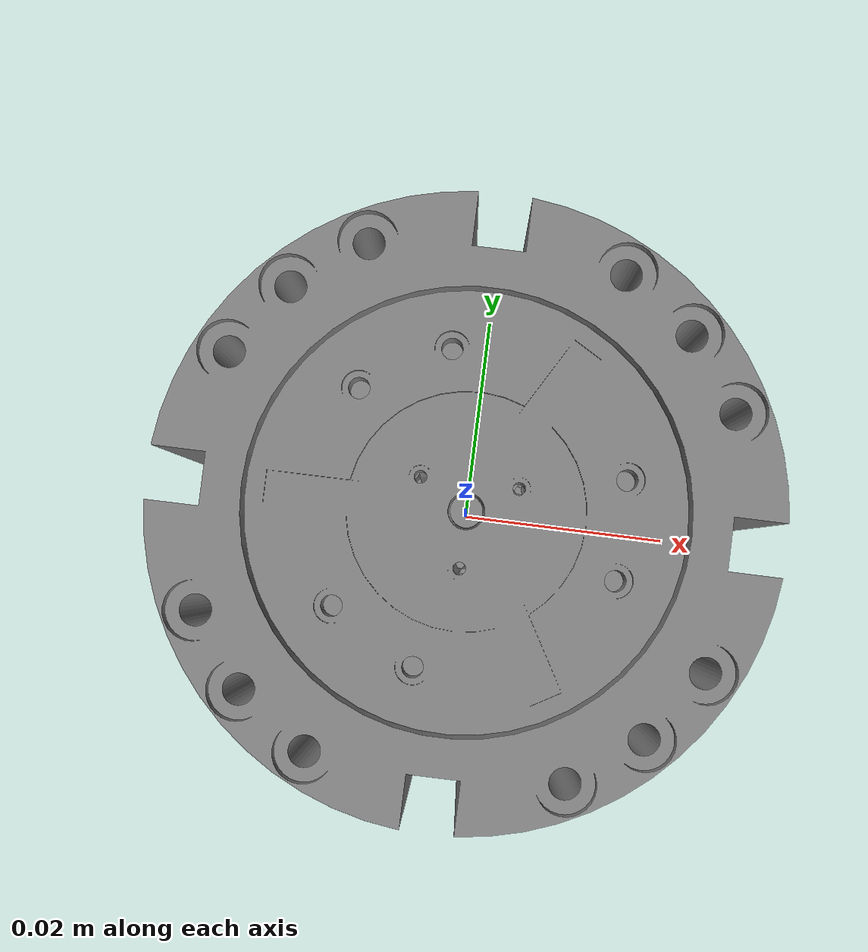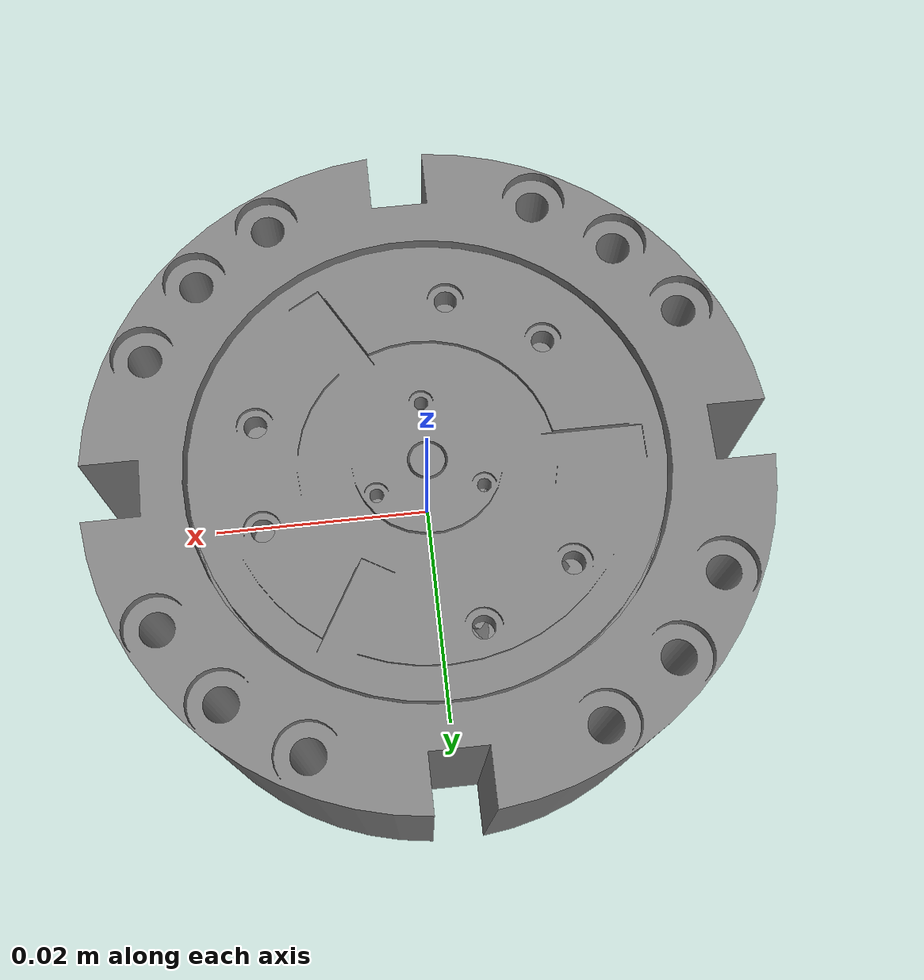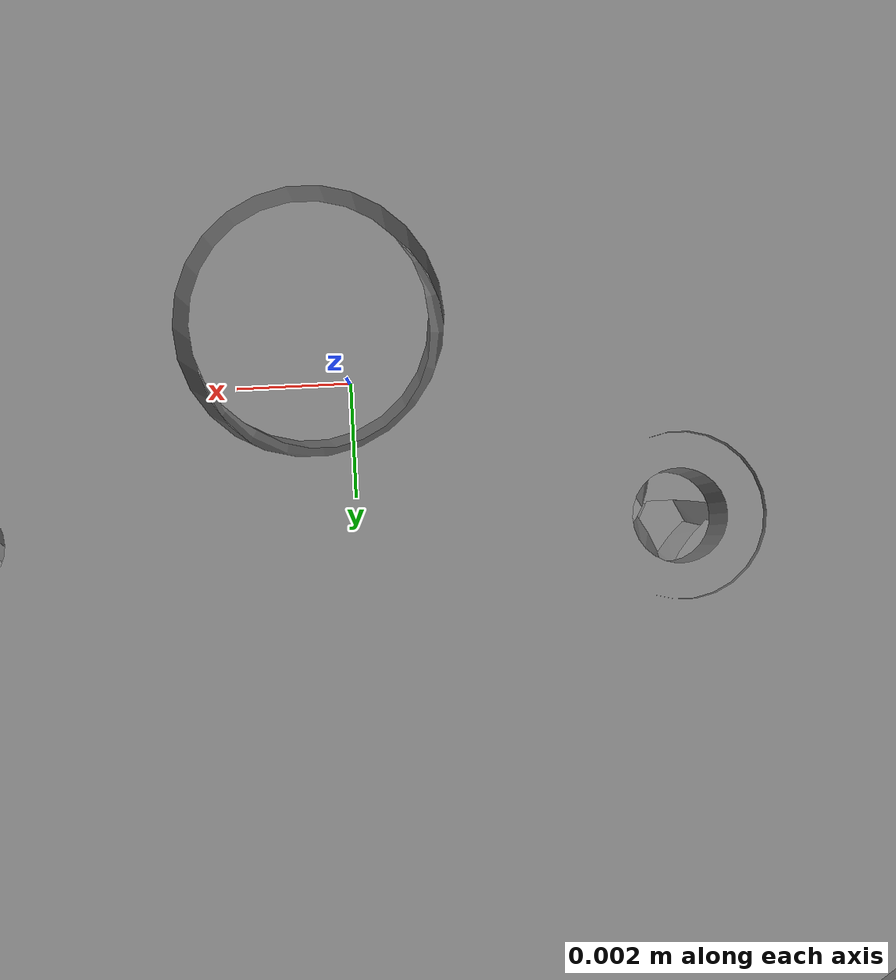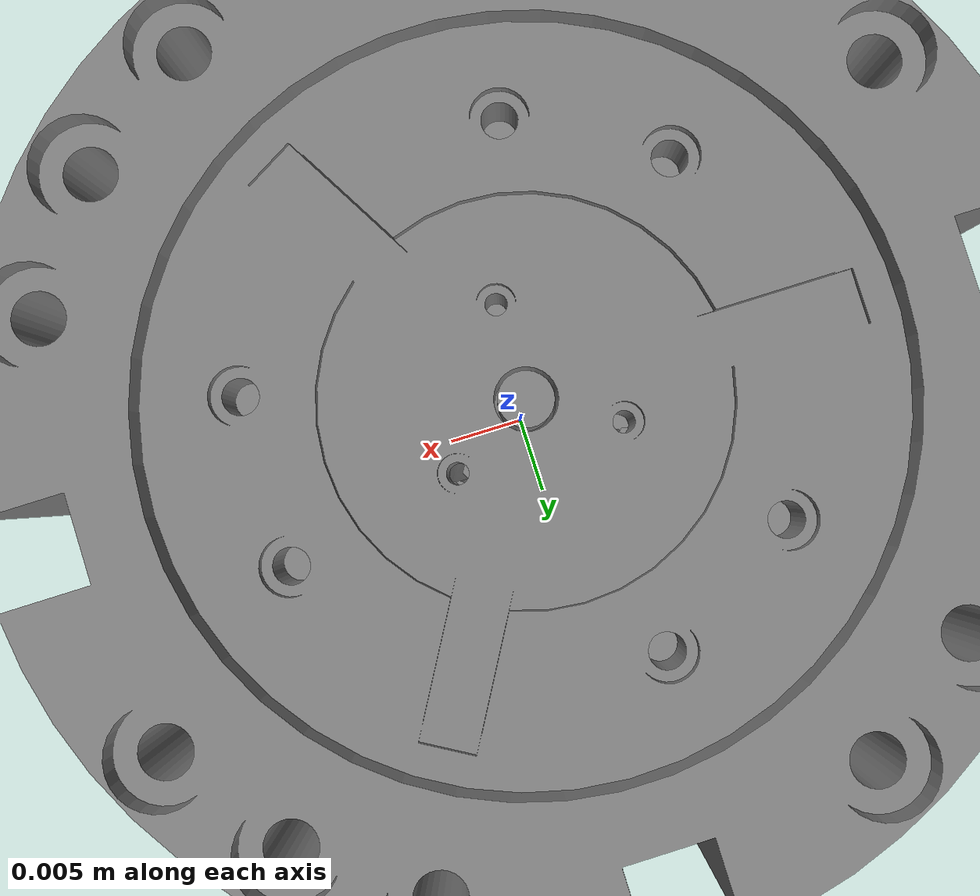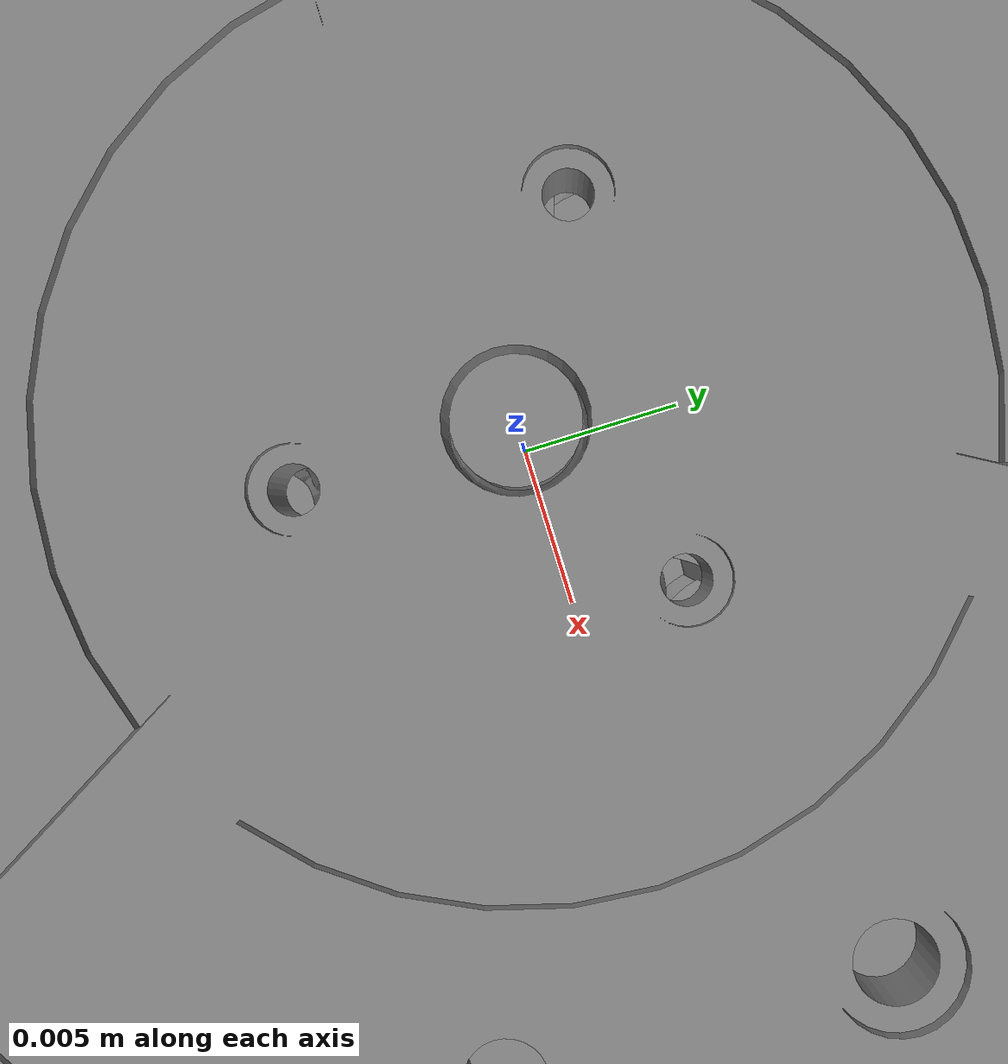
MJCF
<?xml version='1.0' encoding='utf-8'?>
<mujoco model="compact_two_stage_planetary_reducer"><compiler angle="radian" coordinate="local" /><asset><mesh name="mesh_input_flange" file="meshes/mesh_input_flange.obj" scale="0.001 0.001 0.001" /><mesh name="mesh_input_shaft" file="meshes/mesh_input_shaft.obj" scale="0.001 0.001 0.001" /><mesh name="mesh_micro_radial_ball_bearing_ball" file="meshes/mesh_micro_radial_ball_bearing_ball.obj" scale="0.001 0.001 0.001" /><mesh name="mesh_micro_radial_ball_bearing_inner_ring" file="meshes/mesh_micro_radial_ball_bearing_inner_ring.obj" scale="0.001 0.001 0.001" /><mesh name="mesh_micro_radial_ball_bearing_outer_ring" file="meshes/mesh_micro_radial_ball_bearing_outer_ring.obj" scale="0.001 0.001 0.001" /><mesh name="mesh_output_flange" file="meshes/mesh_output_flange.obj" scale="0.001 0.001 0.001" /><mesh name="mesh_reducer_housing" file="meshes/mesh_reducer_housing.obj" scale="0.001 0.001 0.001" /><mesh name="mesh_stage1_carrier" file="meshes/mesh_stage1_carrier.obj" scale="0.001 0.001 0.001" /><mesh name="mesh_stage1_planet_gear" file="meshes/mesh_stage1_planet_gear.obj" scale="0.001 0.001 0.001" /><mesh name="mesh_stage1_ring_gear" file="meshes/mesh_stage1_ring_gear.obj" scale="0.001 0.001 0.001" /><mesh name="mesh_stage1_sun_gear" file="meshes/mesh_stage1_sun_gear.obj" scale="0.001 0.001 0.001" /><mesh name="mesh_stage2_carrier" file="meshes/mesh_stage2_carrier.obj" scale="0.001 0.001 0.001" /><mesh name="mesh_stage2_planet_gear" file="meshes/mesh_stage2_planet_gear.obj" scale="0.001 0.001 0.001" /><mesh name="mesh_stage2_ring_gear" file="meshes/mesh_stage2_ring_gear.obj" scale="0.001 0.001 0.001" /><mesh name="mesh_stage2_sun_gear" file="meshes/mesh_stage2_sun_gear.obj" scale="0.001 0.001 0.001" /></asset><option gravity="0 0 0" timestep="0.002" /><worldbody><geom name="geom_cmp_pg2_housing_01" type="mesh" mesh="mesh_reducer_housing" /><body name="body_cmp_pg2_input_flange_01" pos="4.4408920985e-19 -4.32630110459e-19 -1.7763568394e-18" quat="1 0 0 0"><geom name="geom_cmp_pg2_input_flange_01" type="mesh" mesh="mesh_input_flange" /><joint name="joint_input_flange_to_shaft" type="hinge" pos="-4.4408920985e-19 4.32630110459e-19 -0.012" axis="0 0 1" damping="1e-4" /></body><body name="body_cmp_pg2_output_flange_01" pos="4.4408920985e-19 -3.17821455672e-19 -1.7763568394e-18" quat="1 0 0 0"><geom name="geom_cmp_pg2_output_flange_01" type="mesh" mesh="mesh_output_flange" /><joint name="joint_output_flange_to_stage2_carrier" type="hinge" pos="-4.4408920985e-19 3.17821455672e-19 0.015" axis="0 0 1" damping="1e-4" /></body><body name="body_cmp_pg2_input_shaft_01" pos="-2.22044604925e-19 -7.9255239235e-20 -4.4408920985e-19" quat="1 0 0 0"><geom name="geom_cmp_pg2_input_shaft_01" type="mesh" mesh="mesh_input_shaft" /><site name="site_input_bearing_inner_to_shaft__adapter_closure_0" pos="0 0 -0.011" quat="1 0 0 0" size="0.002" /><joint name="joint_input_shaft_revolute" type="hinge" pos="2.22044604925e-19 7.9255239235e-20 -0.0038" axis="0 0 1" damping="1e-4" /></body><body name="body_cmp_pg2_s01_carrier_01" pos="0 2.3687107099e-20 0" quat="1 0 0 0"><geom name="geom_cmp_pg2_s01_carrier_01" type="mesh" mesh="mesh_stage1_carrier" /><site name="site_intermediate_bearing_inner_to_stage1_carrier__adapter_closure_0" pos="0 0 0" quat="1 0 0 0" size="0.002" /><joint name="joint_stage1_carrier_revolute" type="hinge" pos="0 -2.3687107099e-20 0.0058" axis="0 0 1" damping="1e-4" /></body><body name="body_cmp_pg2_s02_carrier_01" pos="-4.4408920985e-19 -4.62411357498e-20 0" quat="1 0 0 0"><geom name="geom_cmp_pg2_s02_carrier_01" type="mesh" mesh="mesh_stage2_carrier" /><site name="site_output_bearing_inner_to_stage2_carrier__adapter_closure_0" pos="0 0 0.0108" quat="1 0 0 0" size="0.002" /><joint name="joint_stage2_carrier_revolute" type="hinge" pos="4.4408920985e-19 4.62411357498e-20 0.015" axis="0 0 1" damping="1e-4" /></body><body name="body_cmp_pg2_s01_ring_01" pos="0 0 -0.0084" quat="1 0 0 0"><geom name="geom_cmp_pg2_s01_ring_01" type="mesh" mesh="mesh_stage1_ring_gear" /><joint name="joint_stage1_ring_fixed" type="hinge" pos="2.19269047363e-18 -1.31998828369e-17 0.0046" axis="0 0 1" damping="1e-4" /></body><body name="body_cmp_pg2_s01_sun_01" pos="7.2858385991e-19 1.94004901433e-18 -0.0084" quat="1 0 0 0"><geom name="geom_cmp_pg2_s01_sun_01" type="mesh" mesh="mesh_stage1_sun_gear" /><joint name="joint_stage1_sun_to_input_shaft" type="hinge" pos="-7.2858385991e-19 -1.94004901433e-18 0.0046" axis="0 0 1" damping="1e-4" /></body><body name="body_cmp_pg2_s02_ring_01" pos="0 0 0.0012" quat="1 0 0 0"><geom name="geom_cmp_pg2_s02_ring_01" type="mesh" mesh="mesh_stage2_ring_gear" /><joint name="joint_stage2_ring_fixed" type="hinge" pos="2.91433543964e-18 -7.6803403855e-18 0.0046" axis="0 0 1" damping="1e-4" /></body><body name="body_cmp_pg2_s02_sun_01" pos="5.44703171457e-19 1.9214863869e-18 0.0012" quat="1 0 0 0"><geom name="geom_cmp_pg2_s02_sun_01" type="mesh" mesh="mesh_stage2_sun_gear" /><joint name="joint_stage2_sun_to_stage1_carrier" type="hinge" pos="-5.44703171457e-19 -1.9214863869e-18 0.0046" axis="0 0 1" damping="1e-4" /></body><body name="body_cmp_pg2_s01_planet_01" pos="0.01125 -2.38015705774e-18 -0.0084" quat="0.0871557427477 0 0 0.996194698092"><geom name="geom_cmp_pg2_s01_planet_01" type="mesh" mesh="mesh_stage1_planet_gear" /><site name="site_stage1_planet_bearing_1_outer_to_planet__adapter_closure_0" pos="0 0 0.0023" quat="1 0 0 0" size="0.002" /><joint name="joint_stage1_planet_1_revolute" type="hinge" pos="0 -3.90312782095e-18 0.0046" axis="0 0 1" damping="1e-4" /></body><body name="body_cmp_pg2_s02_planet_01" pos="0.009 -3.69017623819e-18 0.0012" quat="0.13052619222 0 0 0.991444861374"><geom name="geom_cmp_pg2_s02_planet_01" type="mesh" mesh="mesh_stage2_planet_gear" /><site name="site_stage2_planet_bearing_1_outer_to_planet__adapter_closure_0" pos="0 0 0.0023" quat="1 0 0 0" size="0.002" /><joint name="joint_stage2_planet_1_revolute" type="hinge" pos="0 -3.90312782095e-18 0.0046" axis="0 0 1" damping="1e-4" /></body><body name="body_cmp_pg2_s01_planet_02" pos="-0.005625 0.00974278579257 -0.0084" quat="0.819152044289 0 -0 -0.573576436351"><geom name="geom_cmp_pg2_s01_planet_02" type="mesh" mesh="mesh_stage1_planet_gear" /><site name="site_stage1_planet_bearing_2_outer_to_planet__adapter_closure_0" pos="0 0 0.0023" quat="1 0 0 0" size="0.002" /><joint name="joint_stage1_planet_2_revolute" type="hinge" pos="3.46944695195e-18 -4.33680868994e-18 0.0046" axis="0 0 1" damping="1e-4" /></body><body name="body_cmp_pg2_s02_planet_02" pos="-0.0045 0.00779422863406 0.0012" quat="0.793353340291 0 -0 -0.608761429009"><geom name="geom_cmp_pg2_s02_planet_02" type="mesh" mesh="mesh_stage2_planet_gear" /><site name="site_stage2_planet_bearing_2_outer_to_planet__adapter_closure_0" pos="0 0 0.0023" quat="1 0 0 0" size="0.002" /><joint name="joint_stage2_planet_2_revolute" type="hinge" pos="0 -4.33680868994e-18 0.0046" axis="0 0 1" damping="1e-4" /></body><body name="body_cmp_pg2_s01_planet_03" pos="-0.005625 -0.00974278579257 -0.0084" quat="0.906307787037 0 0 0.422618261741"><geom name="geom_cmp_pg2_s01_planet_03" type="mesh" mesh="mesh_stage1_planet_gear" /><site name="site_stage1_planet_bearing_3_outer_to_planet__adapter_closure_0" pos="0 0 0.0023" quat="1 0 0 0" size="0.002" /><joint name="joint_stage1_planet_3_revolute" type="hinge" pos="0 -3.46944695195e-18 0.0046" axis="0 0 1" damping="1e-4" /></body><body name="body_cmp_pg2_s02_planet_03" pos="-0.0045 -0.00779422863406 0.0012" quat="0.923879532511 0 0 0.382683432365"><geom name="geom_cmp_pg2_s02_planet_03" type="mesh" mesh="mesh_stage2_planet_gear" /><site name="site_stage2_planet_bearing_3_outer_to_planet__adapter_closure_0" pos="0 0 0.0023" quat="1 0 0 0" size="0.002" /><joint name="joint_stage2_planet_3_revolute" type="hinge" pos="1.73472347598e-18 -3.90312782095e-18 0.0046" axis="0 0 1" damping="1e-4" /></body><body name="body_cmp_pg2_aux_input_bearing" pos="1.7763568394e-18 -1.21790987369e-18 -0.011" quat="1 0 0 0"><geom name="geom_cmp_pg2_aux_input_bearing" type="mesh" mesh="mesh_micro_radial_ball_bearing_outer_ring" /><joint name="joint_input_bearing_outer_to_housing" type="hinge" pos="-1.7763568394e-18 1.21790987369e-18 0" axis="0 0 1" damping="1e-4" /></body><body name="body_cmp_pg2_aux_input_bearing_inner_ring" pos="1.7763568394e-18 -1.21790987369e-18 -0.011" quat="1 0 0 0"><geom name="geom_cmp_pg2_aux_input_bearing_inner_ring" type="mesh" mesh="mesh_micro_radial_ball_bearing_inner_ring" /><site name="site_input_bearing_inner_to_shaft__adapter_closure_1" pos="-2.22044604925e-19 1.7386395776e-19 0" quat="1 0 0 0" size="0.002" /><joint name="joint_cmp_pg2_aux_input_bearing_inner_outer_revolute" type="hinge" pos="0 0 0" axis="0 0 1" damping="1e-4" /></body><body name="body_cmp_pg2_aux_input_bearing_ball_00" pos="0.00245 -1.21790987369e-18 -0.011" quat="1 0 0 0"><geom name="geom_cmp_pg2_aux_input_bearing_ball_00" type="mesh" mesh="mesh_micro_radial_ball_bearing_ball" /><joint name="joint_cmp_pg2_aux_input_bearing___fixed__ball_00" type="hinge" pos="0 0 0" axis="0 0 1" damping="1e-4" /></body><body name="body_cmp_pg2_aux_input_bearing_ball_01" pos="0.00173241161391 0.00173241161391 -0.011" quat="0.923879532511 0 0 0.382683432365"><geom name="geom_cmp_pg2_aux_input_bearing_ball_01" type="mesh" mesh="mesh_micro_radial_ball_bearing_ball" /><joint name="joint_cmp_pg2_aux_input_bearing___fixed__ball_01" type="hinge" pos="0 0 0" axis="0 0 1" damping="1e-4" /></body><body name="body_cmp_pg2_aux_input_bearing_ball_02" pos="1.9263760723e-18 0.00245 -0.011" quat="0.707106781187 0 0 0.707106781187"><geom name="geom_cmp_pg2_aux_input_bearing_ball_02" type="mesh" mesh="mesh_micro_radial_ball_bearing_ball" /><joint name="joint_cmp_pg2_aux_input_bearing___fixed__ball_02" type="hinge" pos="0 0 0" axis="0 0 1" damping="1e-4" /></body><body name="body_cmp_pg2_aux_input_bearing_ball_03" pos="-0.00173241161391 0.00173241161391 -0.011" quat="0.382683432365 0 0 0.923879532511"><geom name="geom_cmp_pg2_aux_input_bearing_ball_03" type="mesh" mesh="mesh_micro_radial_ball_bearing_ball" /><joint name="joint_cmp_pg2_aux_input_bearing___fixed__ball_03" type="hinge" pos="0 0 0" axis="0 0 1" damping="1e-4" /></body><body name="body_cmp_pg2_aux_input_bearing_ball_04" pos="-0.00245 -9.178714079e-19 -0.011" quat="6.12323399574e-17 0 0 1"><geom name="geom_cmp_pg2_aux_input_bearing_ball_04" type="mesh" mesh="mesh_micro_radial_ball_bearing_ball" /><joint name="joint_cmp_pg2_aux_input_bearing___fixed__ball_04" type="hinge" pos="0 0 0" axis="0 0 1" damping="1e-4" /></body><body name="body_cmp_pg2_aux_input_bearing_ball_05" pos="-0.00173241161391 -0.00173241161391 -0.011" quat="-0.382683432365 0 0 0.923879532511"><geom name="geom_cmp_pg2_aux_input_bearing_ball_05" type="mesh" mesh="mesh_micro_radial_ball_bearing_ball" /><joint name="joint_cmp_pg2_aux_input_bearing___fixed__ball_05" type="hinge" pos="0 0 0" axis="0 0 1" damping="1e-4" /></body><body name="body_cmp_pg2_aux_input_bearing_ball_06" pos="1.32629914071e-18 -0.00245 -0.011" quat="0.707106781187 0 0 -0.707106781187"><geom name="geom_cmp_pg2_aux_input_bearing_ball_06" type="mesh" mesh="mesh_micro_radial_ball_bearing_ball" /><joint name="joint_cmp_pg2_aux_input_bearing___fixed__ball_06" type="hinge" pos="0 0 0" axis="0 0 1" damping="1e-4" /></body><body name="body_cmp_pg2_aux_input_bearing_ball_07" pos="0.00173241161391 -0.00173241161391 -0.011" quat="0.923879532511 0 0 -0.382683432365"><geom name="geom_cmp_pg2_aux_input_bearing_ball_07" type="mesh" mesh="mesh_micro_radial_ball_bearing_ball" /><joint name="joint_cmp_pg2_aux_input_bearing___fixed__ball_07" type="hinge" pos="0 0 0" axis="0 0 1" damping="1e-4" /></body><body name="body_cmp_pg2_aux_intermediate_bearing" pos="1.7763568394e-18 -1.21790987369e-18 0" quat="1 0 0 0"><geom name="geom_cmp_pg2_aux_intermediate_bearing" type="mesh" mesh="mesh_micro_radial_ball_bearing_outer_ring" /><joint name="joint_intermediate_bearing_outer_to_housing" type="hinge" pos="-1.7763568394e-18 1.21790987369e-18 0" axis="0 0 1" damping="1e-4" /></body><body name="body_cmp_pg2_aux_intermediate_bearing_inner_ring" pos="1.7763568394e-18 -1.21790987369e-18 0" quat="1 0 0 0"><geom name="geom_cmp_pg2_aux_intermediate_bearing_inner_ring" type="mesh" mesh="mesh_micro_radial_ball_bearing_inner_ring" /><site name="site_intermediate_bearing_inner_to_stage1_carrier__adapter_closure_1" pos="-2.22044604925e-19 1.7386395776e-19 0" quat="1 0 0 0" size="0.002" /><joint name="joint_cmp_pg2_aux_intermediate_bearing_inner_outer_revolute" type="hinge" pos="0 0 0" axis="0 0 1" damping="1e-4" /></body><body name="body_cmp_pg2_aux_intermediate_bearing_ball_00" pos="0.00245 -1.21790987369e-18 0" quat="1 0 0 0"><geom name="geom_cmp_pg2_aux_intermediate_bearing_ball_00" type="mesh" mesh="mesh_micro_radial_ball_bearing_ball" /><joint name="joint_cmp_pg2_aux_intermediate_bearing___fixed__ball_00" type="hinge" pos="0 0 0" axis="0 0 1" damping="1e-4" /></body><body name="body_cmp_pg2_aux_intermediate_bearing_ball_01" pos="0.00173241161391 0.00173241161391 0" quat="0.923879532511 0 0 0.382683432365"><geom name="geom_cmp_pg2_aux_intermediate_bearing_ball_01" type="mesh" mesh="mesh_micro_radial_ball_bearing_ball" /><joint name="joint_cmp_pg2_aux_intermediate_bearing___fixed__ball_01" type="hinge" pos="0 0 0" axis="0 0 1" damping="1e-4" /></body><body name="body_cmp_pg2_aux_intermediate_bearing_ball_02" pos="1.9263760723e-18 0.00245 0" quat="0.707106781187 0 0 0.707106781187"><geom name="geom_cmp_pg2_aux_intermediate_bearing_ball_02" type="mesh" mesh="mesh_micro_radial_ball_bearing_ball" /><joint name="joint_cmp_pg2_aux_intermediate_bearing___fixed__ball_02" type="hinge" pos="0 0 0" axis="0 0 1" damping="1e-4" /></body><body name="body_cmp_pg2_aux_intermediate_bearing_ball_03" pos="-0.00173241161391 0.00173241161391 0" quat="0.382683432365 0 0 0.923879532511"><geom name="geom_cmp_pg2_aux_intermediate_bearing_ball_03" type="mesh" mesh="mesh_micro_radial_ball_bearing_ball" /><joint name="joint_cmp_pg2_aux_intermediate_bearing___fixed__ball_03" type="hinge" pos="0 0 0" axis="0 0 1" damping="1e-4" /></body><body name="body_cmp_pg2_aux_intermediate_bearing_ball_04" pos="-0.00245 -9.178714079e-19 0" quat="6.12323399574e-17 0 0 1"><geom name="geom_cmp_pg2_aux_intermediate_bearing_ball_04" type="mesh" mesh="mesh_micro_radial_ball_bearing_ball" /><joint name="joint_cmp_pg2_aux_intermediate_bearing___fixed__ball_04" type="hinge" pos="0 0 0" axis="0 0 1" damping="1e-4" /></body><body name="body_cmp_pg2_aux_intermediate_bearing_ball_05" pos="-0.00173241161391 -0.00173241161391 0" quat="-0.382683432365 0 0 0.923879532511"><geom name="geom_cmp_pg2_aux_intermediate_bearing_ball_05" type="mesh" mesh="mesh_micro_radial_ball_bearing_ball" /><joint name="joint_cmp_pg2_aux_intermediate_bearing___fixed__ball_05" type="hinge" pos="0 0 0" axis="0 0 1" damping="1e-4" /></body><body name="body_cmp_pg2_aux_intermediate_bearing_ball_06" pos="1.32629914071e-18 -0.00245 0" quat="0.707106781187 0 0 -0.707106781187"><geom name="geom_cmp_pg2_aux_intermediate_bearing_ball_06" type="mesh" mesh="mesh_micro_radial_ball_bearing_ball" /><joint name="joint_cmp_pg2_aux_intermediate_bearing___fixed__ball_06" type="hinge" pos="0 0 0" axis="0 0 1" damping="1e-4" /></body><body name="body_cmp_pg2_aux_intermediate_bearing_ball_07" pos="0.00173241161391 -0.00173241161391 0" quat="0.923879532511 0 0 -0.382683432365"><geom name="geom_cmp_pg2_aux_intermediate_bearing_ball_07" type="mesh" mesh="mesh_micro_radial_ball_bearing_ball" /><joint name="joint_cmp_pg2_aux_intermediate_bearing___fixed__ball_07" type="hinge" pos="0 0 0" axis="0 0 1" damping="1e-4" /></body><body name="body_cmp_pg2_aux_output_bearing" pos="1.7763568394e-18 -1.21790987369e-18 0.0108" quat="1 0 0 0"><geom name="geom_cmp_pg2_aux_output_bearing" type="mesh" mesh="mesh_micro_radial_ball_bearing_outer_ring" /><joint name="joint_output_bearing_outer_to_housing" type="hinge" pos="-1.7763568394e-18 1.21790987369e-18 0" axis="0 0 1" damping="1e-4" /></body><body name="body_cmp_pg2_aux_output_bearing_inner_ring" pos="1.7763568394e-18 -1.21790987369e-18 0.0108" quat="1 0 0 0"><geom name="geom_cmp_pg2_aux_output_bearing_inner_ring" type="mesh" mesh="mesh_micro_radial_ball_bearing_inner_ring" /><site name="site_output_bearing_inner_to_stage2_carrier__adapter_closure_1" pos="-2.22044604925e-19 1.7386395776e-19 0" quat="1 0 0 0" size="0.002" /><joint name="joint_cmp_pg2_aux_output_bearing_inner_outer_revolute" type="hinge" pos="0 0 0" axis="0 0 1" damping="1e-4" /></body><body name="body_cmp_pg2_aux_output_bearing_ball_00" pos="0.00245 -1.21790987369e-18 0.0108" quat="1 0 0 0"><geom name="geom_cmp_pg2_aux_output_bearing_ball_00" type="mesh" mesh="mesh_micro_radial_ball_bearing_ball" /><joint name="joint_cmp_pg2_aux_output_bearing___fixed__ball_00" type="hinge" pos="0 0 0" axis="0 0 1" damping="1e-4" /></body><body name="body_cmp_pg2_aux_output_bearing_ball_01" pos="0.00173241161391 0.00173241161391 0.0108" quat="0.923879532511 0 0 0.382683432365"><geom name="geom_cmp_pg2_aux_output_bearing_ball_01" type="mesh" mesh="mesh_micro_radial_ball_bearing_ball" /><joint name="joint_cmp_pg2_aux_output_bearing___fixed__ball_01" type="hinge" pos="0 0 0" axis="0 0 1" damping="1e-4" /></body><body name="body_cmp_pg2_aux_output_bearing_ball_02" pos="1.9263760723e-18 0.00245 0.0108" quat="0.707106781187 0 0 0.707106781187"><geom name="geom_cmp_pg2_aux_output_bearing_ball_02" type="mesh" mesh="mesh_micro_radial_ball_bearing_ball" /><joint name="joint_cmp_pg2_aux_output_bearing___fixed__ball_02" type="hinge" pos="0 0 0" axis="0 0 1" damping="1e-4" /></body><body name="body_cmp_pg2_aux_output_bearing_ball_03" pos="-0.00173241161391 0.00173241161391 0.0108" quat="0.382683432365 0 0 0.923879532511"><geom name="geom_cmp_pg2_aux_output_bearing_ball_03" type="mesh" mesh="mesh_micro_radial_ball_bearing_ball" /><joint name="joint_cmp_pg2_aux_output_bearing___fixed__ball_03" type="hinge" pos="0 0 0" axis="0 0 1" damping="1e-4" /></body><body name="body_cmp_pg2_aux_output_bearing_ball_04" pos="-0.00245 -9.178714079e-19 0.0108" quat="6.12323399574e-17 0 0 1"><geom name="geom_cmp_pg2_aux_output_bearing_ball_04" type="mesh" mesh="mesh_micro_radial_ball_bearing_ball" /><joint name="joint_cmp_pg2_aux_output_bearing___fixed__ball_04" type="hinge" pos="0 0 0" axis="0 0 1" damping="1e-4" /></body><body name="body_cmp_pg2_aux_output_bearing_ball_05" pos="-0.00173241161391 -0.00173241161391 0.0108" quat="-0.382683432365 0 0 0.923879532511"><geom name="geom_cmp_pg2_aux_output_bearing_ball_05" type="mesh" mesh="mesh_micro_radial_ball_bearing_ball" /><joint name="joint_cmp_pg2_aux_output_bearing___fixed__ball_05" type="hinge" pos="0 0 0" axis="0 0 1" damping="1e-4" /></body><body name="body_cmp_pg2_aux_output_bearing_ball_06" pos="1.32629914071e-18 -0.00245 0.0108" quat="0.707106781187 0 0 -0.707106781187"><geom name="geom_cmp_pg2_aux_output_bearing_ball_06" type="mesh" mesh="mesh_micro_radial_ball_bearing_ball" /><joint name="joint_cmp_pg2_aux_output_bearing___fixed__ball_06" type="hinge" pos="0 0 0" axis="0 0 1" damping="1e-4" /></body><body name="body_cmp_pg2_aux_output_bearing_ball_07" pos="0.00173241161391 -0.00173241161391 0.0108" quat="0.923879532511 0 0 -0.382683432365"><geom name="geom_cmp_pg2_aux_output_bearing_ball_07" type="mesh" mesh="mesh_micro_radial_ball_bearing_ball" /><joint name="joint_cmp_pg2_aux_output_bearing___fixed__ball_07" type="hinge" pos="0 0 0" axis="0 0 1" damping="1e-4" /></body><body name="body_cmp_pg2_aux_stage1_planet_bearing_1" pos="0.01125 -3.59806693143e-18 -0.0061" quat="1 0 0 0"><geom name="geom_cmp_pg2_aux_stage1_planet_bearing_1" type="mesh" mesh="mesh_micro_radial_ball_bearing_outer_ring" /><site name="site_stage1_planet_bearing_1_outer_to_planet__adapter_closure_1" pos="-1.73472347598e-18 1.21790987369e-18 0" quat="1 0 0 0" size="0.002" /><joint name="joint_cmp_pg2_aux_stage1_planet_bearing_1_inner_outer_revolute" type="hinge" pos="0 0 0" axis="0 0 1" damping="1e-4" /></body><body name="body_cmp_pg2_aux_stage1_planet_bearing_1_inner_ring" pos="0.01125 -3.59806693143e-18 -0.0061" quat="1 0 0 0"><geom name="geom_cmp_pg2_aux_stage1_planet_bearing_1_inner_ring" type="mesh" mesh="mesh_micro_radial_ball_bearing_inner_ring" /><joint name="joint_stage1_planet_bearing_1_inner_to_carrier_pin" type="hinge" pos="0 1.7386395776e-19 0" axis="0 0 1" damping="1e-4" /></body><body name="body_cmp_pg2_aux_stage1_planet_bearing_1_ball_00" pos="0.0137 -3.59806693143e-18 -0.0061" quat="1 0 0 0"><geom name="geom_cmp_pg2_aux_stage1_planet_bearing_1_ball_00" type="mesh" mesh="mesh_micro_radial_ball_bearing_ball" /><joint name="joint_cmp_pg2_aux_stage1_planet_bearing_1___fixed__ball_00" type="hinge" pos="0 0 0" axis="0 0 1" damping="1e-4" /></body><body name="body_cmp_pg2_aux_stage1_planet_bearing_1_ball_01" pos="0.0129824116139 0.00173241161391 -0.0061" quat="0.923879532511 0 0 0.382683432365"><geom name="geom_cmp_pg2_aux_stage1_planet_bearing_1_ball_01" type="mesh" mesh="mesh_micro_radial_ball_bearing_ball" /><joint name="joint_cmp_pg2_aux_stage1_planet_bearing_1___fixed__ball_01" type="hinge" pos="0 0 0" axis="0 0 1" damping="1e-4" /></body><body name="body_cmp_pg2_aux_stage1_planet_bearing_1_ball_02" pos="0.01125 0.00245 -0.0061" quat="0.707106781187 0 0 0.707106781187"><geom name="geom_cmp_pg2_aux_stage1_planet_bearing_1_ball_02" type="mesh" mesh="mesh_micro_radial_ball_bearing_ball" /><joint name="joint_cmp_pg2_aux_stage1_planet_bearing_1___fixed__ball_02" type="hinge" pos="0 0 0" axis="0 0 1" damping="1e-4" /></body><body name="body_cmp_pg2_aux_stage1_planet_bearing_1_ball_03" pos="0.00951758838609 0.00173241161391 -0.0061" quat="0.382683432365 0 0 0.923879532511"><geom name="geom_cmp_pg2_aux_stage1_planet_bearing_1_ball_03" type="mesh" mesh="mesh_micro_radial_ball_bearing_ball" /><joint name="joint_cmp_pg2_aux_stage1_planet_bearing_1___fixed__ball_03" type="hinge" pos="0 0 0" axis="0 0 1" damping="1e-4" /></body><body name="body_cmp_pg2_aux_stage1_planet_bearing_1_ball_04" pos="0.0088 -3.29802846564e-18 -0.0061" quat="6.12323399574e-17 0 0 1"><geom name="geom_cmp_pg2_aux_stage1_planet_bearing_1_ball_04" type="mesh" mesh="mesh_micro_radial_ball_bearing_ball" /><joint name="joint_cmp_pg2_aux_stage1_planet_bearing_1___fixed__ball_04" type="hinge" pos="0 0 0" axis="0 0 1" damping="1e-4" /></body><body name="body_cmp_pg2_aux_stage1_planet_bearing_1_ball_05" pos="0.00951758838609 -0.00173241161391 -0.0061" quat="-0.382683432365 0 0 0.923879532511"><geom name="geom_cmp_pg2_aux_stage1_planet_bearing_1_ball_05" type="mesh" mesh="mesh_micro_radial_ball_bearing_ball" /><joint name="joint_cmp_pg2_aux_stage1_planet_bearing_1___fixed__ball_05" type="hinge" pos="0 0 0" axis="0 0 1" damping="1e-4" /></body><body name="body_cmp_pg2_aux_stage1_planet_bearing_1_ball_06" pos="0.01125 -0.00245 -0.0061" quat="0.707106781187 0 0 -0.707106781187"><geom name="geom_cmp_pg2_aux_stage1_planet_bearing_1_ball_06" type="mesh" mesh="mesh_micro_radial_ball_bearing_ball" /><joint name="joint_cmp_pg2_aux_stage1_planet_bearing_1___fixed__ball_06" type="hinge" pos="0 0 0" axis="0 0 1" damping="1e-4" /></body><body name="body_cmp_pg2_aux_stage1_planet_bearing_1_ball_07" pos="0.0129824116139 -0.00173241161391 -0.0061" quat="0.923879532511 0 0 -0.382683432365"><geom name="geom_cmp_pg2_aux_stage1_planet_bearing_1_ball_07" type="mesh" mesh="mesh_micro_radial_ball_bearing_ball" /><joint name="joint_cmp_pg2_aux_stage1_planet_bearing_1___fixed__ball_07" type="hinge" pos="0 0 0" axis="0 0 1" damping="1e-4" /></body><body name="body_cmp_pg2_aux_stage1_planet_bearing_2" pos="-0.005625 0.00974278579257 -0.0061" quat="1 0 0 0"><geom name="geom_cmp_pg2_aux_stage1_planet_bearing_2" type="mesh" mesh="mesh_micro_radial_ball_bearing_outer_ring" /><site name="site_stage1_planet_bearing_2_outer_to_planet__adapter_closure_1" pos="-1.73472347598e-18 1.73472347598e-18 0" quat="1 0 0 0" size="0.002" /><joint name="joint_cmp_pg2_aux_stage1_planet_bearing_2_inner_outer_revolute" type="hinge" pos="0 0 0" axis="0 0 1" damping="1e-4" /></body><body name="body_cmp_pg2_aux_stage1_planet_bearing_2_inner_ring" pos="-0.005625 0.00974278579257 -0.0061" quat="1 0 0 0"><geom name="geom_cmp_pg2_aux_stage1_planet_bearing_2_inner_ring" type="mesh" mesh="mesh_micro_radial_ball_bearing_inner_ring" /><joint name="joint_stage1_planet_bearing_2_inner_to_carrier_pin" type="hinge" pos="0 0 0" axis="0 0 1" damping="1e-4" /></body><body name="body_cmp_pg2_aux_stage1_planet_bearing_2_ball_00" pos="-0.003175 0.00974278579257 -0.0061" quat="1 0 0 0"><geom name="geom_cmp_pg2_aux_stage1_planet_bearing_2_ball_00" type="mesh" mesh="mesh_micro_radial_ball_bearing_ball" /><joint name="joint_cmp_pg2_aux_stage1_planet_bearing_2___fixed__ball_00" type="hinge" pos="0 0 0" axis="0 0 1" damping="1e-4" /></body><body name="body_cmp_pg2_aux_stage1_planet_bearing_2_ball_01" pos="-0.00389258838609 0.0114751974065 -0.0061" quat="0.923879532511 0 0 0.382683432365"><geom name="geom_cmp_pg2_aux_stage1_planet_bearing_2_ball_01" type="mesh" mesh="mesh_micro_radial_ball_bearing_ball" /><joint name="joint_cmp_pg2_aux_stage1_planet_bearing_2___fixed__ball_01" type="hinge" pos="0 0 0" axis="0 0 1" damping="1e-4" /></body><body name="body_cmp_pg2_aux_stage1_planet_bearing_2_ball_02" pos="-0.005625 0.0121927857926 -0.0061" quat="0.707106781187 0 0 0.707106781187"><geom name="geom_cmp_pg2_aux_stage1_planet_bearing_2_ball_02" type="mesh" mesh="mesh_micro_radial_ball_bearing_ball" /><joint name="joint_cmp_pg2_aux_stage1_planet_bearing_2___fixed__ball_02" type="hinge" pos="0 0 0" axis="0 0 1" damping="1e-4" /></body><body name="body_cmp_pg2_aux_stage1_planet_bearing_2_ball_03" pos="-0.00735741161391 0.0114751974065 -0.0061" quat="0.382683432365 0 0 0.923879532511"><geom name="geom_cmp_pg2_aux_stage1_planet_bearing_2_ball_03" type="mesh" mesh="mesh_micro_radial_ball_bearing_ball" /><joint name="joint_cmp_pg2_aux_stage1_planet_bearing_2___fixed__ball_03" type="hinge" pos="0 0 0" axis="0 0 1" damping="1e-4" /></body><body name="body_cmp_pg2_aux_stage1_planet_bearing_2_ball_04" pos="-0.008075 0.00974278579257 -0.0061" quat="6.12323399574e-17 0 0 1"><geom name="geom_cmp_pg2_aux_stage1_planet_bearing_2_ball_04" type="mesh" mesh="mesh_micro_radial_ball_bearing_ball" /><joint name="joint_cmp_pg2_aux_stage1_planet_bearing_2___fixed__ball_04" type="hinge" pos="0 0 0" axis="0 0 1" damping="1e-4" /></body><body name="body_cmp_pg2_aux_stage1_planet_bearing_2_ball_05" pos="-0.00735741161391 0.00801037417867 -0.0061" quat="-0.382683432365 0 0 0.923879532511"><geom name="geom_cmp_pg2_aux_stage1_planet_bearing_2_ball_05" type="mesh" mesh="mesh_micro_radial_ball_bearing_ball" /><joint name="joint_cmp_pg2_aux_stage1_planet_bearing_2___fixed__ball_05" type="hinge" pos="0 0 0" axis="0 0 1" damping="1e-4" /></body><body name="body_cmp_pg2_aux_stage1_planet_bearing_2_ball_06" pos="-0.005625 0.00729278579257 -0.0061" quat="0.707106781187 0 0 -0.707106781187"><geom name="geom_cmp_pg2_aux_stage1_planet_bearing_2_ball_06" type="mesh" mesh="mesh_micro_radial_ball_bearing_ball" /><joint name="joint_cmp_pg2_aux_stage1_planet_bearing_2___fixed__ball_06" type="hinge" pos="0 0 0" axis="0 0 1" damping="1e-4" /></body><body name="body_cmp_pg2_aux_stage1_planet_bearing_2_ball_07" pos="-0.00389258838609 0.00801037417867 -0.0061" quat="0.923879532511 0 0 -0.382683432365"><geom name="geom_cmp_pg2_aux_stage1_planet_bearing_2_ball_07" type="mesh" mesh="mesh_micro_radial_ball_bearing_ball" /><joint name="joint_cmp_pg2_aux_stage1_planet_bearing_2___fixed__ball_07" type="hinge" pos="0 0 0" axis="0 0 1" damping="1e-4" /></body><body name="body_cmp_pg2_aux_stage1_planet_bearing_3" pos="-0.005625 -0.00974278579257 -0.0061" quat="1 0 0 0"><geom name="geom_cmp_pg2_aux_stage1_planet_bearing_3" type="mesh" mesh="mesh_micro_radial_ball_bearing_outer_ring" /><site name="site_stage1_planet_bearing_3_outer_to_planet__adapter_closure_1" pos="-1.73472347598e-18 1.73472347598e-18 0" quat="1 0 0 0" size="0.002" /><joint name="joint_cmp_pg2_aux_stage1_planet_bearing_3_inner_outer_revolute" type="hinge" pos="0 0 0" axis="0 0 1" damping="1e-4" /></body><body name="body_cmp_pg2_aux_stage1_planet_bearing_3_inner_ring" pos="-0.005625 -0.00974278579257 -0.0061" quat="1 0 0 0"><geom name="geom_cmp_pg2_aux_stage1_planet_bearing_3_inner_ring" type="mesh" mesh="mesh_micro_radial_ball_bearing_inner_ring" /><joint name="joint_stage1_planet_bearing_3_inner_to_carrier_pin" type="hinge" pos="0 0 0" axis="0 0 1" damping="1e-4" /></body><body name="body_cmp_pg2_aux_stage1_planet_bearing_3_ball_00" pos="-0.003175 -0.00974278579257 -0.0061" quat="1 0 0 0"><geom name="geom_cmp_pg2_aux_stage1_planet_bearing_3_ball_00" type="mesh" mesh="mesh_micro_radial_ball_bearing_ball" /><joint name="joint_cmp_pg2_aux_stage1_planet_bearing_3___fixed__ball_00" type="hinge" pos="0 0 0" axis="0 0 1" damping="1e-4" /></body><body name="body_cmp_pg2_aux_stage1_planet_bearing_3_ball_01" pos="-0.00389258838609 -0.00801037417867 -0.0061" quat="0.923879532511 0 0 0.382683432365"><geom name="geom_cmp_pg2_aux_stage1_planet_bearing_3_ball_01" type="mesh" mesh="mesh_micro_radial_ball_bearing_ball" /><joint name="joint_cmp_pg2_aux_stage1_planet_bearing_3___fixed__ball_01" type="hinge" pos="0 0 0" axis="0 0 1" damping="1e-4" /></body><body name="body_cmp_pg2_aux_stage1_planet_bearing_3_ball_02" pos="-0.005625 -0.00729278579257 -0.0061" quat="0.707106781187 0 0 0.707106781187"><geom name="geom_cmp_pg2_aux_stage1_planet_bearing_3_ball_02" type="mesh" mesh="mesh_micro_radial_ball_bearing_ball" /><joint name="joint_cmp_pg2_aux_stage1_planet_bearing_3___fixed__ball_02" type="hinge" pos="0 0 0" axis="0 0 1" damping="1e-4" /></body><body name="body_cmp_pg2_aux_stage1_planet_bearing_3_ball_03" pos="-0.00735741161391 -0.00801037417867 -0.0061" quat="0.382683432365 0 0 0.923879532511"><geom name="geom_cmp_pg2_aux_stage1_planet_bearing_3_ball_03" type="mesh" mesh="mesh_micro_radial_ball_bearing_ball" /><joint name="joint_cmp_pg2_aux_stage1_planet_bearing_3___fixed__ball_03" type="hinge" pos="0 0 0" axis="0 0 1" damping="1e-4" /></body><body name="body_cmp_pg2_aux_stage1_planet_bearing_3_ball_04" pos="-0.008075 -0.00974278579257 -0.0061" quat="6.12323399574e-17 0 0 1"><geom name="geom_cmp_pg2_aux_stage1_planet_bearing_3_ball_04" type="mesh" mesh="mesh_micro_radial_ball_bearing_ball" /><joint name="joint_cmp_pg2_aux_stage1_planet_bearing_3___fixed__ball_04" type="hinge" pos="0 0 0" axis="0 0 1" damping="1e-4" /></body><body name="body_cmp_pg2_aux_stage1_planet_bearing_3_ball_05" pos="-0.00735741161391 -0.0114751974065 -0.0061" quat="-0.382683432365 0 0 0.923879532511"><geom name="geom_cmp_pg2_aux_stage1_planet_bearing_3_ball_05" type="mesh" mesh="mesh_micro_radial_ball_bearing_ball" /><joint name="joint_cmp_pg2_aux_stage1_planet_bearing_3___fixed__ball_05" type="hinge" pos="0 0 0" axis="0 0 1" damping="1e-4" /></body><body name="body_cmp_pg2_aux_stage1_planet_bearing_3_ball_06" pos="-0.005625 -0.0121927857926 -0.0061" quat="0.707106781187 0 0 -0.707106781187"><geom name="geom_cmp_pg2_aux_stage1_planet_bearing_3_ball_06" type="mesh" mesh="mesh_micro_radial_ball_bearing_ball" /><joint name="joint_cmp_pg2_aux_stage1_planet_bearing_3___fixed__ball_06" type="hinge" pos="0 0 0" axis="0 0 1" damping="1e-4" /></body><body name="body_cmp_pg2_aux_stage1_planet_bearing_3_ball_07" pos="-0.00389258838609 -0.0114751974065 -0.0061" quat="0.923879532511 0 0 -0.382683432365"><geom name="geom_cmp_pg2_aux_stage1_planet_bearing_3_ball_07" type="mesh" mesh="mesh_micro_radial_ball_bearing_ball" /><joint name="joint_cmp_pg2_aux_stage1_planet_bearing_3___fixed__ball_07" type="hinge" pos="0 0 0" axis="0 0 1" damping="1e-4" /></body><body name="body_cmp_pg2_aux_stage2_planet_bearing_1" pos="0.009 -4.90808611188e-18 0.0035" quat="1 0 0 0"><geom name="geom_cmp_pg2_aux_stage2_planet_bearing_1" type="mesh" mesh="mesh_micro_radial_ball_bearing_outer_ring" /><site name="site_stage2_planet_bearing_1_outer_to_planet__adapter_closure_1" pos="-1.73472347598e-18 1.21790987369e-18 0" quat="1 0 0 0" size="0.002" /><joint name="joint_cmp_pg2_aux_stage2_planet_bearing_1_inner_outer_revolute" type="hinge" pos="0 0 0" axis="0 0 1" damping="1e-4" /></body><body name="body_cmp_pg2_aux_stage2_planet_bearing_1_inner_ring" pos="0.009 -4.90808611188e-18 0.0035" quat="1 0 0 0"><geom name="geom_cmp_pg2_aux_stage2_planet_bearing_1_inner_ring" type="mesh" mesh="mesh_micro_radial_ball_bearing_inner_ring" /><joint name="joint_stage2_planet_bearing_1_inner_to_carrier_pin" type="hinge" pos="0 1.7386395776e-19 0" axis="0 0 1" damping="1e-4" /></body><body name="body_cmp_pg2_aux_stage2_planet_bearing_1_ball_00" pos="0.01145 -4.90808611188e-18 0.0035" quat="1 0 0 0"><geom name="geom_cmp_pg2_aux_stage2_planet_bearing_1_ball_00" type="mesh" mesh="mesh_micro_radial_ball_bearing_ball" /><joint name="joint_cmp_pg2_aux_stage2_planet_bearing_1___fixed__ball_00" type="hinge" pos="0 0 0" axis="0 0 1" damping="1e-4" /></body><body name="body_cmp_pg2_aux_stage2_planet_bearing_1_ball_01" pos="0.0107324116139 0.00173241161391 0.0035" quat="0.923879532511 0 0 0.382683432365"><geom name="geom_cmp_pg2_aux_stage2_planet_bearing_1_ball_01" type="mesh" mesh="mesh_micro_radial_ball_bearing_ball" /><joint name="joint_cmp_pg2_aux_stage2_planet_bearing_1___fixed__ball_01" type="hinge" pos="0 0 0" axis="0 0 1" damping="1e-4" /></body><body name="body_cmp_pg2_aux_stage2_planet_bearing_1_ball_02" pos="0.009 0.00245 0.0035" quat="0.707106781187 0 0 0.707106781187"><geom name="geom_cmp_pg2_aux_stage2_planet_bearing_1_ball_02" type="mesh" mesh="mesh_micro_radial_ball_bearing_ball" /><joint name="joint_cmp_pg2_aux_stage2_planet_bearing_1___fixed__ball_02" type="hinge" pos="0 0 0" axis="0 0 1" damping="1e-4" /></body><body name="body_cmp_pg2_aux_stage2_planet_bearing_1_ball_03" pos="0.00726758838609 0.00173241161391 0.0035" quat="0.382683432365 0 0 0.923879532511"><geom name="geom_cmp_pg2_aux_stage2_planet_bearing_1_ball_03" type="mesh" mesh="mesh_micro_radial_ball_bearing_ball" /><joint name="joint_cmp_pg2_aux_stage2_planet_bearing_1___fixed__ball_03" type="hinge" pos="0 0 0" axis="0 0 1" damping="1e-4" /></body><body name="body_cmp_pg2_aux_stage2_planet_bearing_1_ball_04" pos="0.00655 -4.60804764609e-18 0.0035" quat="6.12323399574e-17 0 0 1"><geom name="geom_cmp_pg2_aux_stage2_planet_bearing_1_ball_04" type="mesh" mesh="mesh_micro_radial_ball_bearing_ball" /><joint name="joint_cmp_pg2_aux_stage2_planet_bearing_1___fixed__ball_04" type="hinge" pos="0 0 0" axis="0 0 1" damping="1e-4" /></body><body name="body_cmp_pg2_aux_stage2_planet_bearing_1_ball_05" pos="0.00726758838609 -0.00173241161391 0.0035" quat="-0.382683432365 0 0 0.923879532511"><geom name="geom_cmp_pg2_aux_stage2_planet_bearing_1_ball_05" type="mesh" mesh="mesh_micro_radial_ball_bearing_ball" /><joint name="joint_cmp_pg2_aux_stage2_planet_bearing_1___fixed__ball_05" type="hinge" pos="0 0 0" axis="0 0 1" damping="1e-4" /></body><body name="body_cmp_pg2_aux_stage2_planet_bearing_1_ball_06" pos="0.009 -0.00245 0.0035" quat="0.707106781187 0 0 -0.707106781187"><geom name="geom_cmp_pg2_aux_stage2_planet_bearing_1_ball_06" type="mesh" mesh="mesh_micro_radial_ball_bearing_ball" /><joint name="joint_cmp_pg2_aux_stage2_planet_bearing_1___fixed__ball_06" type="hinge" pos="0 0 0" axis="0 0 1" damping="1e-4" /></body><body name="body_cmp_pg2_aux_stage2_planet_bearing_1_ball_07" pos="0.0107324116139 -0.00173241161391 0.0035" quat="0.923879532511 0 0 -0.382683432365"><geom name="geom_cmp_pg2_aux_stage2_planet_bearing_1_ball_07" type="mesh" mesh="mesh_micro_radial_ball_bearing_ball" /><joint name="joint_cmp_pg2_aux_stage2_planet_bearing_1___fixed__ball_07" type="hinge" pos="0 0 0" axis="0 0 1" damping="1e-4" /></body><body name="body_cmp_pg2_aux_stage2_planet_bearing_2" pos="-0.0045 0.00779422863406 0.0035" quat="1 0 0 0"><geom name="geom_cmp_pg2_aux_stage2_planet_bearing_2" type="mesh" mesh="mesh_micro_radial_ball_bearing_outer_ring" /><site name="site_stage2_planet_bearing_2_outer_to_planet__adapter_closure_1" pos="-1.73472347598e-18 8.67361737988e-19 0" quat="1 0 0 0" size="0.002" /><joint name="joint_cmp_pg2_aux_stage2_planet_bearing_2_inner_outer_revolute" type="hinge" pos="0 0 0" axis="0 0 1" damping="1e-4" /></body><body name="body_cmp_pg2_aux_stage2_planet_bearing_2_inner_ring" pos="-0.0045 0.00779422863406 0.0035" quat="1 0 0 0"><geom name="geom_cmp_pg2_aux_stage2_planet_bearing_2_inner_ring" type="mesh" mesh="mesh_micro_radial_ball_bearing_inner_ring" /><joint name="joint_stage2_planet_bearing_2_inner_to_carrier_pin" type="hinge" pos="0 0 0" axis="0 0 1" damping="1e-4" /></body><body name="body_cmp_pg2_aux_stage2_planet_bearing_2_ball_00" pos="-0.00205 0.00779422863406 0.0035" quat="1 0 0 0"><geom name="geom_cmp_pg2_aux_stage2_planet_bearing_2_ball_00" type="mesh" mesh="mesh_micro_radial_ball_bearing_ball" /><joint name="joint_cmp_pg2_aux_stage2_planet_bearing_2___fixed__ball_00" type="hinge" pos="0 0 0" axis="0 0 1" damping="1e-4" /></body><body name="body_cmp_pg2_aux_stage2_planet_bearing_2_ball_01" pos="-0.00276758838609 0.00952664024797 0.0035" quat="0.923879532511 0 0 0.382683432365"><geom name="geom_cmp_pg2_aux_stage2_planet_bearing_2_ball_01" type="mesh" mesh="mesh_micro_radial_ball_bearing_ball" /><joint name="joint_cmp_pg2_aux_stage2_planet_bearing_2___fixed__ball_01" type="hinge" pos="0 0 0" axis="0 0 1" damping="1e-4" /></body><body name="body_cmp_pg2_aux_stage2_planet_bearing_2_ball_02" pos="-0.0045 0.0102442286341 0.0035" quat="0.707106781187 0 0 0.707106781187"><geom name="geom_cmp_pg2_aux_stage2_planet_bearing_2_ball_02" type="mesh" mesh="mesh_micro_radial_ball_bearing_ball" /><joint name="joint_cmp_pg2_aux_stage2_planet_bearing_2___fixed__ball_02" type="hinge" pos="0 0 0" axis="0 0 1" damping="1e-4" /></body><body name="body_cmp_pg2_aux_stage2_planet_bearing_2_ball_03" pos="-0.00623241161391 0.00952664024797 0.0035" quat="0.382683432365 0 0 0.923879532511"><geom name="geom_cmp_pg2_aux_stage2_planet_bearing_2_ball_03" type="mesh" mesh="mesh_micro_radial_ball_bearing_ball" /><joint name="joint_cmp_pg2_aux_stage2_planet_bearing_2___fixed__ball_03" type="hinge" pos="0 0 0" axis="0 0 1" damping="1e-4" /></body><body name="body_cmp_pg2_aux_stage2_planet_bearing_2_ball_04" pos="-0.00695 0.00779422863406 0.0035" quat="6.12323399574e-17 0 0 1"><geom name="geom_cmp_pg2_aux_stage2_planet_bearing_2_ball_04" type="mesh" mesh="mesh_micro_radial_ball_bearing_ball" /><joint name="joint_cmp_pg2_aux_stage2_planet_bearing_2___fixed__ball_04" type="hinge" pos="0 0 0" axis="0 0 1" damping="1e-4" /></body><body name="body_cmp_pg2_aux_stage2_planet_bearing_2_ball_05" pos="-0.00623241161391 0.00606181702015 0.0035" quat="-0.382683432365 0 0 0.923879532511"><geom name="geom_cmp_pg2_aux_stage2_planet_bearing_2_ball_05" type="mesh" mesh="mesh_micro_radial_ball_bearing_ball" /><joint name="joint_cmp_pg2_aux_stage2_planet_bearing_2___fixed__ball_05" type="hinge" pos="0 0 0" axis="0 0 1" damping="1e-4" /></body><body name="body_cmp_pg2_aux_stage2_planet_bearing_2_ball_06" pos="-0.0045 0.00534422863406 0.0035" quat="0.707106781187 0 0 -0.707106781187"><geom name="geom_cmp_pg2_aux_stage2_planet_bearing_2_ball_06" type="mesh" mesh="mesh_micro_radial_ball_bearing_ball" /><joint name="joint_cmp_pg2_aux_stage2_planet_bearing_2___fixed__ball_06" type="hinge" pos="0 0 0" axis="0 0 1" damping="1e-4" /></body><body name="body_cmp_pg2_aux_stage2_planet_bearing_2_ball_07" pos="-0.00276758838609 0.00606181702015 0.0035" quat="0.923879532511 0 0 -0.382683432365"><geom name="geom_cmp_pg2_aux_stage2_planet_bearing_2_ball_07" type="mesh" mesh="mesh_micro_radial_ball_bearing_ball" /><joint name="joint_cmp_pg2_aux_stage2_planet_bearing_2___fixed__ball_07" type="hinge" pos="0 0 0" axis="0 0 1" damping="1e-4" /></body><body name="body_cmp_pg2_aux_stage2_planet_bearing_3" pos="-0.0045 -0.00779422863406 0.0035" quat="1 0 0 0"><geom name="geom_cmp_pg2_aux_stage2_planet_bearing_3" type="mesh" mesh="mesh_micro_radial_ball_bearing_outer_ring" /><site name="site_stage2_planet_bearing_3_outer_to_planet__adapter_closure_1" pos="-1.73472347598e-18 8.67361737988e-19 0" quat="1 0 0 0" size="0.002" /><joint name="joint_cmp_pg2_aux_stage2_planet_bearing_3_inner_outer_revolute" type="hinge" pos="0 0 0" axis="0 0 1" damping="1e-4" /></body><body name="body_cmp_pg2_aux_stage2_planet_bearing_3_inner_ring" pos="-0.0045 -0.00779422863406 0.0035" quat="1 0 0 0"><geom name="geom_cmp_pg2_aux_stage2_planet_bearing_3_inner_ring" type="mesh" mesh="mesh_micro_radial_ball_bearing_inner_ring" /><joint name="joint_stage2_planet_bearing_3_inner_to_carrier_pin" type="hinge" pos="0 0 0" axis="0 0 1" damping="1e-4" /></body><body name="body_cmp_pg2_aux_stage2_planet_bearing_3_ball_00" pos="-0.00205 -0.00779422863406 0.0035" quat="1 0 0 0"><geom name="geom_cmp_pg2_aux_stage2_planet_bearing_3_ball_00" type="mesh" mesh="mesh_micro_radial_ball_bearing_ball" /><joint name="joint_cmp_pg2_aux_stage2_planet_bearing_3___fixed__ball_00" type="hinge" pos="0 0 0" axis="0 0 1" damping="1e-4" /></body><body name="body_cmp_pg2_aux_stage2_planet_bearing_3_ball_01" pos="-0.00276758838609 -0.00606181702015 0.0035" quat="0.923879532511 0 0 0.382683432365"><geom name="geom_cmp_pg2_aux_stage2_planet_bearing_3_ball_01" type="mesh" mesh="mesh_micro_radial_ball_bearing_ball" /><joint name="joint_cmp_pg2_aux_stage2_planet_bearing_3___fixed__ball_01" type="hinge" pos="0 0 0" axis="0 0 1" damping="1e-4" /></body><body name="body_cmp_pg2_aux_stage2_planet_bearing_3_ball_02" pos="-0.0045 -0.00534422863406 0.0035" quat="0.707106781187 0 0 0.707106781187"><geom name="geom_cmp_pg2_aux_stage2_planet_bearing_3_ball_02" type="mesh" mesh="mesh_micro_radial_ball_bearing_ball" /><joint name="joint_cmp_pg2_aux_stage2_planet_bearing_3___fixed__ball_02" type="hinge" pos="0 0 0" axis="0 0 1" damping="1e-4" /></body><body name="body_cmp_pg2_aux_stage2_planet_bearing_3_ball_03" pos="-0.00623241161391 -0.00606181702015 0.0035" quat="0.382683432365 0 0 0.923879532511"><geom name="geom_cmp_pg2_aux_stage2_planet_bearing_3_ball_03" type="mesh" mesh="mesh_micro_radial_ball_bearing_ball" /><joint name="joint_cmp_pg2_aux_stage2_planet_bearing_3___fixed__ball_03" type="hinge" pos="0 0 0" axis="0 0 1" damping="1e-4" /></body><body name="body_cmp_pg2_aux_stage2_planet_bearing_3_ball_04" pos="-0.00695 -0.00779422863406 0.0035" quat="6.12323399574e-17 0 0 1"><geom name="geom_cmp_pg2_aux_stage2_planet_bearing_3_ball_04" type="mesh" mesh="mesh_micro_radial_ball_bearing_ball" /><joint name="joint_cmp_pg2_aux_stage2_planet_bearing_3___fixed__ball_04" type="hinge" pos="0 0 0" axis="0 0 1" damping="1e-4" /></body><body name="body_cmp_pg2_aux_stage2_planet_bearing_3_ball_05" pos="-0.00623241161391 -0.00952664024797 0.0035" quat="-0.382683432365 0 0 0.923879532511"><geom name="geom_cmp_pg2_aux_stage2_planet_bearing_3_ball_05" type="mesh" mesh="mesh_micro_radial_ball_bearing_ball" /><joint name="joint_cmp_pg2_aux_stage2_planet_bearing_3___fixed__ball_05" type="hinge" pos="0 0 0" axis="0 0 1" damping="1e-4" /></body><body name="body_cmp_pg2_aux_stage2_planet_bearing_3_ball_06" pos="-0.0045 -0.0102442286341 0.0035" quat="0.707106781187 0 0 -0.707106781187"><geom name="geom_cmp_pg2_aux_stage2_planet_bearing_3_ball_06" type="mesh" mesh="mesh_micro_radial_ball_bearing_ball" /><joint name="joint_cmp_pg2_aux_stage2_planet_bearing_3___fixed__ball_06" type="hinge" pos="0 0 0" axis="0 0 1" damping="1e-4" /></body><body name="body_cmp_pg2_aux_stage2_planet_bearing_3_ball_07" pos="-0.00276758838609 -0.00952664024797 0.0035" quat="0.923879532511 0 0 -0.382683432365"><geom name="geom_cmp_pg2_aux_stage2_planet_bearing_3_ball_07" type="mesh" mesh="mesh_micro_radial_ball_bearing_ball" /><joint name="joint_cmp_pg2_aux_stage2_planet_bearing_3___fixed__ball_07" type="hinge" pos="0 0 0" axis="0 0 1" damping="1e-4" /></body></worldbody><equality><connect name="eq_input_bearing_inner_to_shaft__adapter_closure" site1="site_input_bearing_inner_to_shaft__adapter_closure_0" site2="site_input_bearing_inner_to_shaft__adapter_closure_1" /><connect name="eq_intermediate_bearing_inner_to_stage1_carrier__adapter_closure" site1="site_intermediate_bearing_inner_to_stage1_carrier__adapter_closure_0" site2="site_intermediate_bearing_inner_to_stage1_carrier__adapter_closure_1" /><connect name="eq_output_bearing_inner_to_stage2_carrier__adapter_closure" site1="site_output_bearing_inner_to_stage2_carrier__adapter_closure_0" site2="site_output_bearing_inner_to_stage2_carrier__adapter_closure_1" /><connect name="eq_stage1_planet_bearing_1_outer_to_planet__adapter_closure" site1="site_stage1_planet_bearing_1_outer_to_planet__adapter_closure_0" site2="site_stage1_planet_bearing_1_outer_to_planet__adapter_closure_1" /><connect name="eq_stage1_planet_bearing_2_outer_to_planet__adapter_closure" site1="site_stage1_planet_bearing_2_outer_to_planet__adapter_closure_0" site2="site_stage1_planet_bearing_2_outer_to_planet__adapter_closure_1" /><connect name="eq_stage1_planet_bearing_3_outer_to_planet__adapter_closure" site1="site_stage1_planet_bearing_3_outer_to_planet__adapter_closure_0" site2="site_stage1_planet_bearing_3_outer_to_planet__adapter_closure_1" /><connect name="eq_stage2_planet_bearing_1_outer_to_planet__adapter_closure" site1="site_stage2_planet_bearing_1_outer_to_planet__adapter_closure_0" site2="site_stage2_planet_bearing_1_outer_to_planet__adapter_closure_1" /><connect name="eq_stage2_planet_bearing_2_outer_to_planet__adapter_closure" site1="site_stage2_planet_bearing_2_outer_to_planet__adapter_closure_0" site2="site_stage2_planet_bearing_2_outer_to_planet__adapter_closure_1" /><connect name="eq_stage2_planet_bearing_3_outer_to_planet__adapter_closure" site1="site_stage2_planet_bearing_3_outer_to_planet__adapter_closure_0" site2="site_stage2_planet_bearing_3_outer_to_planet__adapter_closure_1" /></equality></mujoco>
